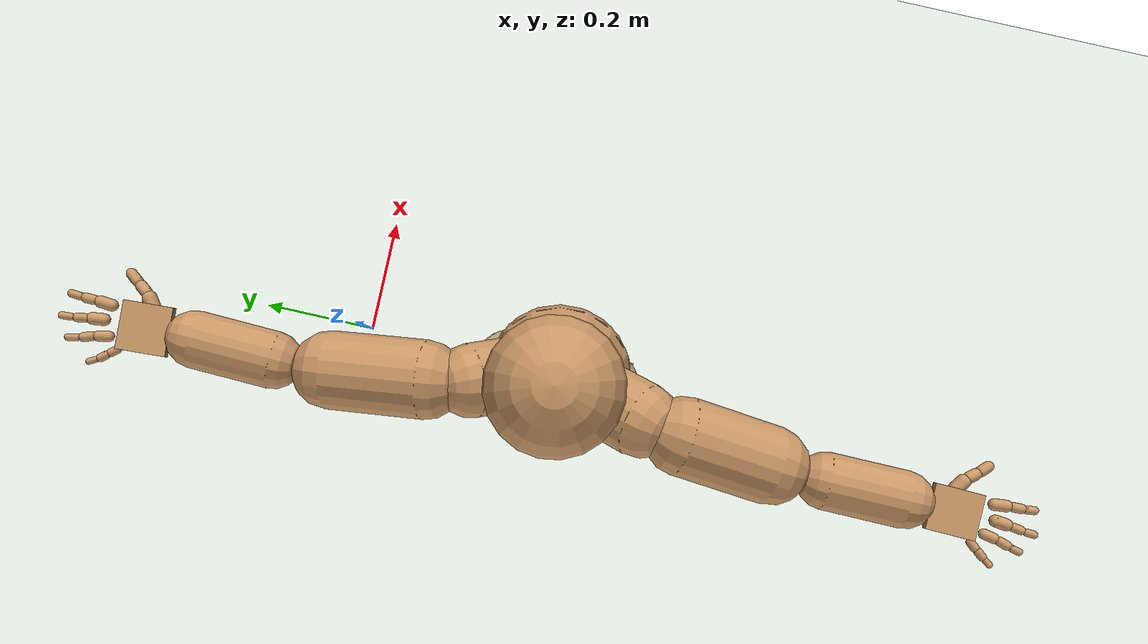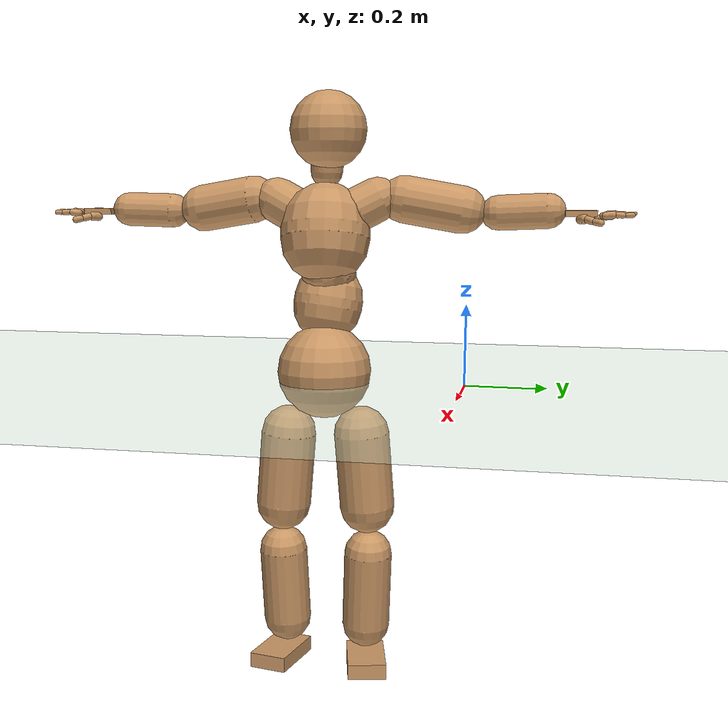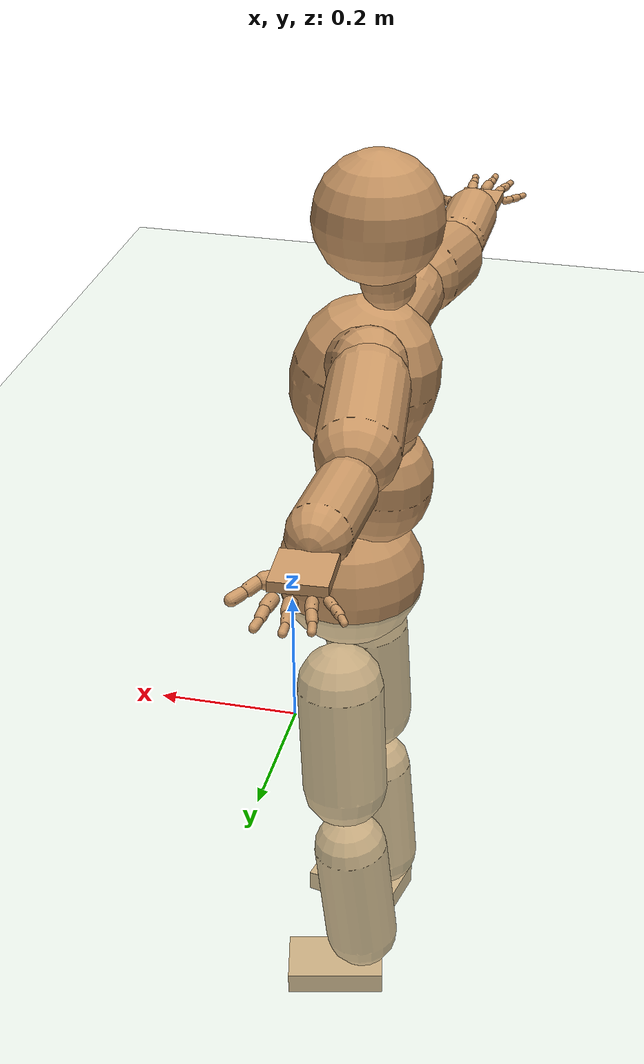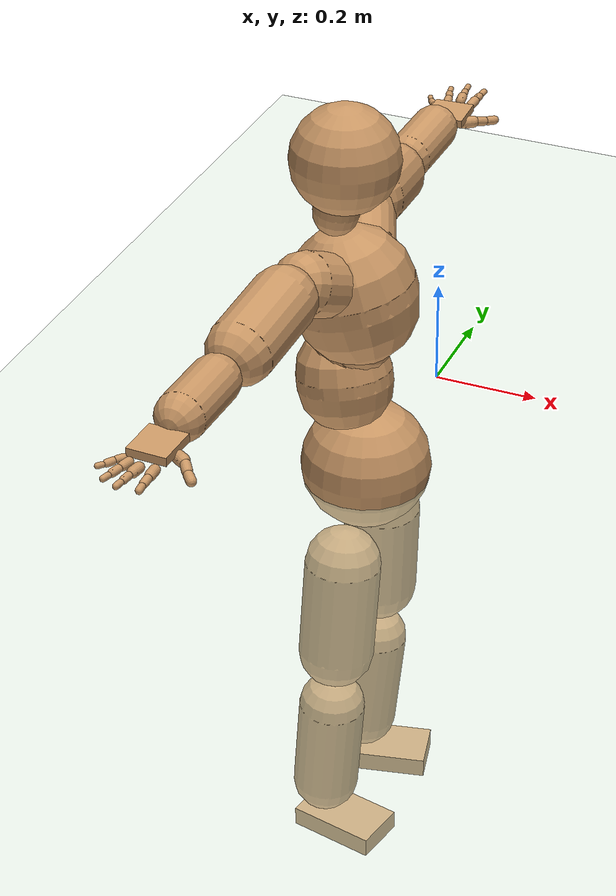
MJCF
<mujoco model="humanoid">
  <compiler coordinate="local" angle="radian"/>
  <default>
    <joint damping="0.0" armature="0.01" stiffness="0.0" limited="true"/>
    <geom conaffinity="1" condim="3" contype="7" margin="0.001" rgba="0.8 0.6 .4 1"/>
  </default>
  <asset>
    <texture type="skybox" builtin="gradient" rgb1=".4 .5 .6" rgb2="0 0 0" width="100" height="100"/>
    <texture builtin="flat" height="1278" mark="cross" markrgb="1 1 1" name="texgeom" random="0.01" rgb1="0.8 0.6 0.4" rgb2="0.8 0.6 0.4" type="cube" width="127"/>
    <texture builtin="checker" height="100" name="texplane" rgb1="0 0 0" rgb2="0.8 0.8 0.8" type="2d" width="100"/>
    <material name="MatPlane" reflectance="0.5" shininess="1" specular="1" texrepeat="60 60" texture="texplane"/>
    <material name="geom" texture="texgeom" texuniform="true"/>
  </asset>
  <worldbody>
    <light cutoff="100" diffuse="1 1 1" dir="-0 0 -1.3" directional="true" exponent="1" pos="0 0 1.3" specular=".1 .1 .1"/>
    <geom conaffinity="1" condim="3" name="floor" pos="0 0 0" rgba="0.8 0.9 0.8 1" size="100 100 .2" type="plane" material="MatPlane"/>
    <body name="Pelvis" pos="0.001 -0.355 0.0258">
      <freejoint name="Pelvis"/>
      <geom type="sphere" contype="1" conaffinity="1" density="500" size="0.1187" pos="0.0000 0.0000 0.0000" name="Pelvis"/>
      <body name="L_Hip" pos="-0.002 0.0904 -0.0944">
        <joint name="L_Hip_x" type="hinge" pos="0 0 0" axis="1 0 0" stiffness="800" damping="80" armature="0.02" range="-180.0000 180.0000"/>
        <joint name="L_Hip_y" type="hinge" pos="0 0 0" axis="0 1 0" stiffness="800" damping="80" armature="0.02" range="-180.0000 180.0000"/>
        <joint name="L_Hip_z" type="hinge" pos="0 0 0" axis="0 0 1" stiffness="800" damping="80" armature="0.02" range="-180.0000 180.0000"/>
        <geom type="capsule" contype="1" conaffinity="1" density="500" fromto="-0.0036 0.0045 -0.0641 -0.0142 0.0180 -0.2563" size="0.0701" name="L_Hip"/>
        <body name="L_Knee" pos="-0.0178 0.0225 -0.3204">
          <joint name="L_Knee_x" type="hinge" pos="0 0 0" axis="1 0 0" stiffness="800" damping="80" armature="0.02" range="-180.0000 180.0000"/>
          <joint name="L_Knee_y" type="hinge" pos="0 0 0" axis="0 1 0" stiffness="800" damping="80" armature="0.02" range="-180.0000 180.0000"/>
          <joint name="L_Knee_z" type="hinge" pos="0 0 0" axis="0 0 1" stiffness="800" damping="80" armature="0.02" range="-180.0000 180.0000"/>
          <geom type="capsule" contype="1" conaffinity="1" density="500" fromto="-0.0060 -0.0029 -0.0663 -0.0240 -0.0115 -0.2653" size="0.0614" name="L_Knee"/>
          <body name="L_Ankle" pos="-0.0301 -0.0144 -0.3317">
            <joint name="L_Ankle_x" type="hinge" pos="0 0 0" axis="1 0 0" stiffness="800" damping="80" armature="0.02" range="-180.0000 180.0000"/>
            <joint name="L_Ankle_y" type="hinge" pos="0 0 0" axis="0 1 0" stiffness="800" damping="80" armature="0.02" range="-180.0000 180.0000"/>
            <joint name="L_Ankle_z" type="hinge" pos="0 0 0" axis="0 0 1" stiffness="800" damping="80" armature="0.02" range="-180.0000 180.0000"/>
            <geom type="box" contype="1" conaffinity="1" density="500" pos="0.0514 0.0117 -0.0173" size="0.0823 0.0489 0.0191" quat="0.9937 0.0000 0.0000 0.1119" name="L_Ankle"/>
            <body name="L_Toe" pos="0.1028 0.0234 -0.0347">
              <joint name="L_Toe_x" type="hinge" pos="0 0 0" axis="1 0 0" stiffness="500" damping="50" armature="0.02" range="-180.0000 180.0000"/>
              <joint name="L_Toe_y" type="hinge" pos="0 0 0" axis="0 1 0" stiffness="500" damping="50" armature="0.02" range="-180.0000 180.0000"/>
              <joint name="L_Toe_z" type="hinge" pos="0 0 0" axis="0 0 1" stiffness="500" damping="50" armature="0.02" range="-180.0000 180.0000"/>
              <geom type="box" contype="1" conaffinity="1" density="500" pos="0.0000 0.0000 0.0191" size="0.0009 0.0024 0.001" quat="0.9929 0.0000 0.0000 0.1188" name="L_Toe"/>
            </body>
          </body>
        </body>
      </body>
      <body name="R_Hip" pos="-0.003 -0.0897 -0.1001">
        <joint name="R_Hip_x" type="hinge" pos="0 0 0" axis="1 0 0" stiffness="800" damping="80" armature="0.02" range="-180.0000 180.0000"/>
        <joint name="R_Hip_y" type="hinge" pos="0 0 0" axis="0 1 0" stiffness="800" damping="80" armature="0.02" range="-180.0000 180.0000"/>
        <joint name="R_Hip_z" type="hinge" pos="0 0 0" axis="0 0 1" stiffness="800" damping="80" armature="0.02" range="-180.0000 180.0000"/>
        <geom type="capsule" contype="1" conaffinity="1" density="500" fromto="-0.0022 -0.0055 -0.0633 -0.0087 -0.0221 -0.2533" size="0.0699" name="R_Hip"/>
        <body name="R_Knee" pos="-0.0109 -0.0276 -0.3167">
          <joint name="R_Knee_x" type="hinge" pos="0 0 0" axis="1 0 0" stiffness="800" damping="80" armature="0.02" range="-180.0000 180.0000"/>
          <joint name="R_Knee_y" type="hinge" pos="0 0 0" axis="0 1 0" stiffness="800" damping="80" armature="0.02" range="-180.0000 180.0000"/>
          <joint name="R_Knee_z" type="hinge" pos="0 0 0" axis="0 0 1" stiffness="800" damping="80" armature="0.02" range="-180.0000 180.0000"/>
          <geom type="capsule" contype="1" conaffinity="1" density="500" fromto="-0.0055 0.0019 -0.0646 -0.0219 0.0077 -0.2585" size="0.0614" name="R_Knee"/>
          <body name="R_Ankle" pos="-0.0274 0.0096 -0.3231">
            <joint name="R_Ankle_x" type="hinge" pos="0 0 0" axis="1 0 0" stiffness="800" damping="80" armature="0.02" range="-180.0000 180.0000"/>
            <joint name="R_Ankle_y" type="hinge" pos="0 0 0" axis="0 1 0" stiffness="800" damping="80" armature="0.02" range="-180.0000 180.0000"/>
            <joint name="R_Ankle_z" type="hinge" pos="0 0 0" axis="0 0 1" stiffness="800" damping="80" armature="0.02" range="-180.0000 180.0000"/>
            <geom type="box" contype="1" conaffinity="1" density="500" pos="0.0485 -0.0097 -0.0189" size="0.0823 0.0489 0.0191" quat="0.9951 0.0000 0.0000 -0.0988" name="R_Ankle"/>
            <body name="R_Toe" pos="0.097 -0.0194 -0.0378">
              <joint name="R_Toe_x" type="hinge" pos="0 0 0" axis="1 0 0" stiffness="500" damping="50" armature="0.02" range="-180.0000 180.0000"/>
              <joint name="R_Toe_y" type="hinge" pos="0 0 0" axis="0 1 0" stiffness="500" damping="50" armature="0.02" range="-180.0000 180.0000"/>
              <joint name="R_Toe_z" type="hinge" pos="0 0 0" axis="0 0 1" stiffness="500" damping="50" armature="0.02" range="-180.0000 180.0000"/>
              <geom type="box" contype="1" conaffinity="1" density="500" pos="0.0000 0.0000 0.0206" size="0.0009 0.0024 0.001" quat="0.9962 0.0000 0.0000 -0.0871" name="R_Toe"/>
            </body>
          </body>
        </body>
      </body>
      <body name="Torso" pos="-0.0323 -0.0067 0.1116">
        <joint name="Torso_x" type="hinge" pos="0 0 0" axis="1 0 0" stiffness="1000" damping="100" armature="0.02" range="-180.0000 180.0000"/>
        <joint name="Torso_y" type="hinge" pos="0 0 0" axis="0 1 0" stiffness="1000" damping="100" armature="0.02" range="-180.0000 180.0000"/>
        <joint name="Torso_z" type="hinge" pos="0 0 0" axis="0 0 1" stiffness="1000" damping="100" armature="0.02" range="-180.0000 180.0000"/>
        <geom type="capsule" contype="1" conaffinity="1" density="500" fromto="-0.0117 0.0088 0.0699 -0.0078 0.0059 0.0466" size="0.0873" name="Torso"/>
        <body name="Spine" pos="-0.0196 0.0147 0.1166">
          <joint name="Spine_x" type="hinge" pos="0 0 0" axis="1 0 0" stiffness="1000" damping="100" armature="0.02" range="-180.0000 180.0000"/>
          <joint name="Spine_y" type="hinge" pos="0 0 0" axis="0 1 0" stiffness="1000" damping="100" armature="0.02" range="-180.0000 180.0000"/>
          <joint name="Spine_z" type="hinge" pos="0 0 0" axis="0 0 1" stiffness="1000" damping="100" armature="0.02" range="-180.0000 180.0000"/>
          <geom type="capsule" contype="1" conaffinity="1" density="500" fromto="0.0285 -0.0051 0.0262 0.0190 -0.0034 0.0175" size="0.0696" name="Spine"/>
          <body name="Chest" pos="0.0475 -0.0086 0.0437">
            <joint name="Chest_x" type="hinge" pos="0 0 0" axis="1 0 0" stiffness="1000" damping="100" armature="0.02" range="-180.0000 180.0000"/>
            <joint name="Chest_y" type="hinge" pos="0 0 0" axis="0 1 0" stiffness="1000" damping="100" armature="0.02" range="-180.0000 180.0000"/>
            <joint name="Chest_z" type="hinge" pos="0 0 0" axis="0 0 1" stiffness="1000" damping="100" armature="0.02" range="-180.0000 180.0000"/>
            <geom type="capsule" contype="1" conaffinity="1" density="500" fromto="-0.0213 -0.0020 0.0874 -0.0142 -0.0013 0.0583" size="0.1122" name="Chest"/>
            <body name="Neck" pos="-0.0541 -0.0068 0.201">
              <joint name="Neck_x" type="hinge" pos="0 0 0" axis="1 0 0" stiffness="500" damping="50" armature="0.02" range="-180.0000 180.0000"/>
              <joint name="Neck_y" type="hinge" pos="0 0 0" axis="0 1 0" stiffness="500" damping="50" armature="0.02" range="-180.0000 180.0000"/>
              <joint name="Neck_z" type="hinge" pos="0 0 0" axis="0 0 1" stiffness="500" damping="50" armature="0.02" range="-180.0000 180.0000"/>
              <geom type="capsule" contype="1" conaffinity="1" density="500" fromto="0.0035 0.0019 0.0252 0.0139 0.0074 0.1007" size="0.0408" name="Neck"/>
              <body name="Head" pos="0.0174 0.0093 0.1259">
                <joint name="Head_x" type="hinge" pos="0 0 0" axis="1 0 0" stiffness="500" damping="50" armature="0.02" range="-180.0000 180.0000"/>
                <joint name="Head_y" type="hinge" pos="0 0 0" axis="0 1 0" stiffness="500" damping="50" armature="0.02" range="-180.0000 180.0000"/>
                <joint name="Head_z" type="hinge" pos="0 0 0" axis="0 0 1" stiffness="500" damping="50" armature="0.02" range="-180.0000 180.0000"/>
                <geom type="sphere" contype="1" conaffinity="1" density="500" size="0.0968" pos="0.0000 0.0000 0.0000" name="Head"/>
              </body>
            </body>
            <body name="L_Thorax" pos="-0.0223 0.0552 0.12">
              <joint name="L_Thorax_x" type="hinge" pos="0 0 0" axis="1 0 0" stiffness="500" damping="50" armature="0.02" range="-180.0000 180.0000"/>
              <joint name="L_Thorax_y" type="hinge" pos="0 0 0" axis="0 1 0" stiffness="500" damping="50" armature="0.02" range="-180.0000 180.0000"/>
              <joint name="L_Thorax_z" type="hinge" pos="0 0 0" axis="0 0 1" stiffness="500" damping="50" armature="0.02" range="-180.0000 180.0000"/>
              <geom type="capsule" contype="1" conaffinity="1" density="500" fromto="-0.0075 0.0173 0.0091 -0.0300 0.0691 0.0363" size="0.0555" name="L_Thorax"/>
              <body name="L_Shoulder" pos="-0.0375 0.0864 0.0454">
                <joint name="L_Shoulder_x" type="hinge" pos="0 0 0" axis="1 0 0" stiffness="500" damping="50" armature="0.02" range="-180.0000 180.0000"/>
                <joint name="L_Shoulder_y" type="hinge" pos="0 0 0" axis="0 1 0" stiffness="500" damping="50" armature="0.02" range="-180.0000 180.0000"/>
                <joint name="L_Shoulder_z" type="hinge" pos="0 0 0" axis="0 0 1" stiffness="500" damping="50" armature="0.02" range="-180.0000 180.0000"/>
                <geom type="capsule" contype="1" conaffinity="1" density="500" fromto="-0.0057 0.0479 -0.0086 -0.0227 0.1914 -0.0345" size="0.0593" name="L_Shoulder"/>
                <body name="L_Elbow" pos="-0.0284 0.2393 -0.0431">
                  <joint name="L_Elbow_x" type="hinge" pos="0 0 0" axis="1 0 0" stiffness="500" damping="50" armature="0.02" range="-720.0000 720.0000"/>
                  <joint name="L_Elbow_y" type="hinge" pos="0 0 0" axis="0 1 0" stiffness="500" damping="50" armature="0.02" range="-720.0000 720.0000"/>
                  <joint name="L_Elbow_z" type="hinge" pos="0 0 0" axis="0 0 1" stiffness="500" damping="50" armature="0.02" range="-720.0000 720.0000"/>
                  <geom type="capsule" contype="1" conaffinity="1" density="500" fromto="0.0014 0.0404 0.0017 0.0057 0.1615 0.0070" size="0.0435" name="L_Elbow"/>
                  <body name="L_Wrist" pos="0.0071 0.2018 0.0087">
                    <joint name="L_Wrist_x" type="hinge" pos="0 0 0" axis="1 0 0" stiffness="300" damping="30" armature="0.02" range="-180.0000 180.0000"/>
                    <joint name="L_Wrist_y" type="hinge" pos="0 0 0" axis="0 1 0" stiffness="300" damping="30" armature="0.02" range="-180.0000 180.0000"/>
                    <joint name="L_Wrist_z" type="hinge" pos="0 0 0" axis="0 0 1" stiffness="300" damping="30" armature="0.02" range="-180.0000 180.0000"/>
                    <geom type="box" contype="1" conaffinity="1" density="500" pos="-0.0020 0.0380 -0.0076" size="0.038 0.0373 0.0074" quat="0.7256 0.0000 0.0000 -0.6881" name="L_Wrist"/>
                    <body name="L_Index1" pos="0.0203 0.0903 -0.0127">
                      <joint name="L_Index1_x" type="hinge" pos="0 0 0" axis="1 0 0" stiffness="100" damping="10" armature="0.02" range="-180.0000 180.0000"/>
                      <joint name="L_Index1_y" type="hinge" pos="0 0 0" axis="0 1 0" stiffness="100" damping="10" armature="0.02" range="-180.0000 180.0000"/>
                      <joint name="L_Index1_z" type="hinge" pos="0 0 0" axis="0 0 1" stiffness="100" damping="10" armature="0.02" range="-180.0000 180.0000"/>
                      <geom type="capsule" contype="1" conaffinity="1" density="500" fromto="0.0006 0.0060 0.0006 0.0022 0.0240 0.0023" size="0.0091" name="L_Index1"/>
                      <body name="L_Index2" pos="0.0028 0.0299 0.0029">
                        <joint name="L_Index2_x" type="hinge" pos="0 0 0" axis="1 0 0" stiffness="100" damping="10" armature="0.02" range="-180.0000 180.0000"/>
                        <joint name="L_Index2_y" type="hinge" pos="0 0 0" axis="0 1 0" stiffness="100" damping="10" armature="0.02" range="-180.0000 180.0000"/>
                        <joint name="L_Index2_z" type="hinge" pos="0 0 0" axis="0 0 1" stiffness="100" damping="10" armature="0.02" range="-180.0000 180.0000"/>
                        <geom type="capsule" contype="1" conaffinity="1" density="500" fromto="0.0000 0.0042 -0.0003 0.0002 0.0169 -0.0010" size="0.0074" name="L_Index2"/>
                        <body name="L_Index3" pos="0.0002 0.0211 -0.0013">
                          <joint name="L_Index3_x" type="hinge" pos="0 0 0" axis="1 0 0" stiffness="100" damping="10" armature="0.02" range="-180.0000 180.0000"/>
                          <joint name="L_Index3_y" type="hinge" pos="0 0 0" axis="0 1 0" stiffness="100" damping="10" armature="0.02" range="-180.0000 180.0000"/>
                          <joint name="L_Index3_z" type="hinge" pos="0 0 0" axis="0 0 1" stiffness="100" damping="10" armature="0.02" range="-180.0000 180.0000"/>
                          <geom type="capsule" contype="1" conaffinity="1" density="500" fromto="0.0004 0.0046 0.0001 0.0018 0.0185 0.0006" size="0.006" name="L_Index3"/>
                        </body>
                      </body>
                    </body>
                    <body name="L_Middle1" pos="-0.002 0.0967 -0.0104">
                      <joint name="L_Middle1_x" type="hinge" pos="0 0 0" axis="1 0 0" stiffness="100" damping="10" armature="0.02" range="-180.0000 180.0000"/>
                      <joint name="L_Middle1_y" type="hinge" pos="0 0 0" axis="0 1 0" stiffness="100" damping="10" armature="0.02" range="-180.0000 180.0000"/>
                      <joint name="L_Middle1_z" type="hinge" pos="0 0 0" axis="0 0 1" stiffness="100" damping="10" armature="0.02" range="-180.0000 180.0000"/>
                      <geom type="capsule" contype="1" conaffinity="1" density="500" fromto="-0.0007 0.0057 0.0003 -0.0028 0.0226 0.0013" size="0.0093" name="L_Middle1"/>
                      <body name="L_Middle2" pos="-0.0035 0.0283 0.0016">
                        <joint name="L_Middle2_x" type="hinge" pos="0 0 0" axis="1 0 0" stiffness="100" damping="10" armature="0.02" range="-180.0000 180.0000"/>
                        <joint name="L_Middle2_y" type="hinge" pos="0 0 0" axis="0 1 0" stiffness="100" damping="10" armature="0.02" range="-180.0000 180.0000"/>
                        <joint name="L_Middle2_z" type="hinge" pos="0 0 0" axis="0 0 1" stiffness="100" damping="10" armature="0.02" range="-180.0000 180.0000"/>
                        <geom type="capsule" contype="1" conaffinity="1" density="500" fromto="-0.0007 0.0043 -0.0001 -0.0028 0.0173 -0.0005" size="0.0068" name="L_Middle2"/>
                        <body name="L_Middle3" pos="-0.0035 0.0217 -0.0006">
                          <joint name="L_Middle3_x" type="hinge" pos="0 0 0" axis="1 0 0" stiffness="100" damping="10" armature="0.02" range="-180.0000 180.0000"/>
                          <joint name="L_Middle3_y" type="hinge" pos="0 0 0" axis="0 1 0" stiffness="100" damping="10" armature="0.02" range="-180.0000 180.0000"/>
                          <joint name="L_Middle3_z" type="hinge" pos="0 0 0" axis="0 0 1" stiffness="100" damping="10" armature="0.02" range="-180.0000 180.0000"/>
                          <geom type="capsule" contype="1" conaffinity="1" density="500" fromto="-0.0003 0.0047 0.0003 -0.0012 0.0189 0.0011" size="0.0055" name="L_Middle3"/>
                        </body>
                      </body>
                    </body>
                    <body name="L_Pinky1" pos="-0.0399 0.0729 -0.0183">
                      <joint name="L_Pinky1_x" type="hinge" pos="0 0 0" axis="1 0 0" stiffness="100" damping="10" armature="0.02" range="-180.0000 180.0000"/>
                      <joint name="L_Pinky1_y" type="hinge" pos="0 0 0" axis="0 1 0" stiffness="100" damping="10" armature="0.02" range="-180.0000 180.0000"/>
                      <joint name="L_Pinky1_z" type="hinge" pos="0 0 0" axis="0 0 1" stiffness="100" damping="10" armature="0.02" range="-180.0000 180.0000"/>
                      <geom type="capsule" contype="1" conaffinity="1" density="500" fromto="-0.0023 0.0028 -0.0001 -0.0092 0.0111 -0.0005" size="0.0066" name="L_Pinky1"/>
                      <body name="L_Pinky2" pos="-0.0115 0.0139 -0.0006">
                        <joint name="L_Pinky2_x" type="hinge" pos="0 0 0" axis="1 0 0" stiffness="100" damping="10" armature="0.02" range="-180.0000 180.0000"/>
                        <joint name="L_Pinky2_y" type="hinge" pos="0 0 0" axis="0 1 0" stiffness="100" damping="10" armature="0.02" range="-180.0000 180.0000"/>
                        <joint name="L_Pinky2_z" type="hinge" pos="0 0 0" axis="0 0 1" stiffness="100" damping="10" armature="0.02" range="-180.0000 180.0000"/>
                        <geom type="capsule" contype="1" conaffinity="1" density="500" fromto="-0.0022 0.0029 -0.0002 -0.0087 0.0114 -0.0009" size="0.0065" name="L_Pinky2"/>
                        <body name="L_Pinky3" pos="-0.0109 0.0143 -0.0011">
                          <joint name="L_Pinky3_x" type="hinge" pos="0 0 0" axis="1 0 0" stiffness="100" damping="10" armature="0.02" range="-180.0000 180.0000"/>
                          <joint name="L_Pinky3_y" type="hinge" pos="0 0 0" axis="0 1 0" stiffness="100" damping="10" armature="0.02" range="-180.0000 180.0000"/>
                          <joint name="L_Pinky3_z" type="hinge" pos="0 0 0" axis="0 0 1" stiffness="100" damping="10" armature="0.02" range="-180.0000 180.0000"/>
                          <geom type="capsule" contype="1" conaffinity="1" density="500" fromto="-0.0018 0.0033 0.0002 -0.0071 0.0130 0.0007" size="0.0048" name="L_Pinky3"/>
                        </body>
                      </body>
                    </body>
                    <body name="L_Ring1" pos="-0.0246 0.0853 -0.0133">
                      <joint name="L_Ring1_x" type="hinge" pos="0 0 0" axis="1 0 0" stiffness="100" damping="10" armature="0.02" range="-180.0000 180.0000"/>
                      <joint name="L_Ring1_y" type="hinge" pos="0 0 0" axis="0 1 0" stiffness="100" damping="10" armature="0.02" range="-180.0000 180.0000"/>
                      <joint name="L_Ring1_z" type="hinge" pos="0 0 0" axis="0 0 1" stiffness="100" damping="10" armature="0.02" range="-180.0000 180.0000"/>
                      <geom type="capsule" contype="1" conaffinity="1" density="500" fromto="-0.0010 0.0052 0.0003 -0.0041 0.0206 0.0013" size="0.008" name="L_Ring1"/>
                      <body name="L_Ring2" pos="-0.0051 0.0258 0.0016">
                        <joint name="L_Ring2_x" type="hinge" pos="0 0 0" axis="1 0 0" stiffness="100" damping="10" armature="0.02" range="-180.0000 180.0000"/>
                        <joint name="L_Ring2_y" type="hinge" pos="0 0 0" axis="0 1 0" stiffness="100" damping="10" armature="0.02" range="-180.0000 180.0000"/>
                        <joint name="L_Ring2_z" type="hinge" pos="0 0 0" axis="0 0 1" stiffness="100" damping="10" armature="0.02" range="-180.0000 180.0000"/>
                        <geom type="capsule" contype="1" conaffinity="1" density="500" fromto="-0.0014 0.0042 -0.0002 -0.0054 0.0168 -0.0009" size="0.0072" name="L_Ring2"/>
                        <body name="L_Ring3" pos="-0.0068 0.021 -0.0011">
                          <joint name="L_Ring3_x" type="hinge" pos="0 0 0" axis="1 0 0" stiffness="100" damping="10" armature="0.02" range="-180.0000 180.0000"/>
                          <joint name="L_Ring3_y" type="hinge" pos="0 0 0" axis="0 1 0" stiffness="100" damping="10" armature="0.02" range="-180.0000 180.0000"/>
                          <joint name="L_Ring3_z" type="hinge" pos="0 0 0" axis="0 0 1" stiffness="100" damping="10" armature="0.02" range="-180.0000 180.0000"/>
                          <geom type="capsule" contype="1" conaffinity="1" density="500" fromto="-0.0010 0.0046 0.0002 -0.0038 0.0184 0.0007" size="0.0054" name="L_Ring3"/>
                        </body>
                      </body>
                    </body>
                    <body name="L_Thumb1" pos="0.0261 0.0349 -0.0212">
                      <joint name="L_Thumb1_x" type="hinge" pos="0 0 0" axis="1 0 0" stiffness="100" damping="10" armature="0.02" range="-180.0000 180.0000"/>
                      <joint name="L_Thumb1_y" type="hinge" pos="0 0 0" axis="0 1 0" stiffness="100" damping="10" armature="0.02" range="-180.0000 180.0000"/>
                      <joint name="L_Thumb1_z" type="hinge" pos="0 0 0" axis="0 0 1" stiffness="100" damping="10" armature="0.02" range="-180.0000 180.0000"/>
                      <geom type="capsule" contype="1" conaffinity="1" density="500" fromto="0.0045 0.0030 0.0003 0.0181 0.0121 0.0012" size="0.0114" name="L_Thumb1"/>
                      <body name="L_Thumb2" pos="0.0226 0.0152 0.0016">
                        <joint name="L_Thumb2_x" type="hinge" pos="0 0 0" axis="1 0 0" stiffness="100" damping="10" armature="0.02" range="-180.0000 180.0000"/>
                        <joint name="L_Thumb2_y" type="hinge" pos="0 0 0" axis="0 1 0" stiffness="100" damping="10" armature="0.02" range="-180.0000 180.0000"/>
                        <joint name="L_Thumb2_z" type="hinge" pos="0 0 0" axis="0 0 1" stiffness="100" damping="10" armature="0.02" range="-180.0000 180.0000"/>
                        <geom type="capsule" contype="1" conaffinity="1" density="500" fromto="0.0027 0.0037 -0.0011 0.0107 0.0148 -0.0044" size="0.009" name="L_Thumb2"/>
                        <body name="L_Thumb3" pos="0.0134 0.0185 -0.0055">
                          <joint name="L_Thumb3_x" type="hinge" pos="0 0 0" axis="1 0 0" stiffness="100" damping="10" armature="0.02" range="-180.0000 180.0000"/>
                          <joint name="L_Thumb3_y" type="hinge" pos="0 0 0" axis="0 1 0" stiffness="100" damping="10" armature="0.02" range="-180.0000 180.0000"/>
                          <joint name="L_Thumb3_z" type="hinge" pos="0 0 0" axis="0 0 1" stiffness="100" damping="10" armature="0.02" range="-180.0000 180.0000"/>
                          <geom type="capsule" contype="1" conaffinity="1" density="500" fromto="0.0031 0.0041 -0.0007 0.0123 0.0164 -0.0028" size="0.0084" name="L_Thumb3"/>
                        </body>
                      </body>
                    </body>
                  </body>
                </body>
              </body>
            </body>
            <body name="R_Thorax" pos="-0.0302 -0.0585 0.1161">
              <joint name="R_Thorax_x" type="hinge" pos="0 0 0" axis="1 0 0" stiffness="500" damping="50" armature="0.02" range="-180.0000 180.0000"/>
              <joint name="R_Thorax_y" type="hinge" pos="0 0 0" axis="0 1 0" stiffness="500" damping="50" armature="0.02" range="-180.0000 180.0000"/>
              <joint name="R_Thorax_z" type="hinge" pos="0 0 0" axis="0 0 1" stiffness="500" damping="50" armature="0.02" range="-180.0000 180.0000"/>
              <geom type="capsule" contype="1" conaffinity="1" density="500" fromto="-0.0058 -0.0187 0.0095 -0.0230 -0.0749 0.0380" size="0.0568" name="R_Thorax"/>
              <body name="R_Shoulder" pos="-0.0288 -0.0936 0.0475">
                <joint name="R_Shoulder_x" type="hinge" pos="0 0 0" axis="1 0 0" stiffness="500" damping="50" armature="0.02" range="-180.0000 180.0000"/>
                <joint name="R_Shoulder_y" type="hinge" pos="0 0 0" axis="0 1 0" stiffness="500" damping="50" armature="0.02" range="-180.0000 180.0000"/>
                <joint name="R_Shoulder_z" type="hinge" pos="0 0 0" axis="0 0 1" stiffness="500" damping="50" armature="0.02" range="-180.0000 180.0000"/>
                <geom type="capsule" contype="1" conaffinity="1" density="500" fromto="-0.0044 -0.0461 -0.0077 -0.0176 -0.1845 -0.0309" size="0.0598" name="R_Shoulder"/>
                <body name="R_Elbow" pos="-0.0219 -0.2306 -0.0387">
                  <joint name="R_Elbow_x" type="hinge" pos="0 0 0" axis="1 0 0" stiffness="500" damping="50" armature="0.02" range="-720.0000 720.0000"/>
                  <joint name="R_Elbow_y" type="hinge" pos="0 0 0" axis="0 1 0" stiffness="500" damping="50" armature="0.02" range="-720.0000 720.0000"/>
                  <joint name="R_Elbow_z" type="hinge" pos="0 0 0" axis="0 0 1" stiffness="500" damping="50" armature="0.02" range="-720.0000 720.0000"/>
                  <geom type="capsule" contype="1" conaffinity="1" density="500" fromto="-0.0004 -0.0403 0.0010 -0.0016 -0.1613 0.0040" size="0.0436" name="R_Elbow"/>
                  <body name="R_Wrist" pos="-0.002 -0.2017 0.005">
                    <joint name="R_Wrist_x" type="hinge" pos="0 0 0" axis="1 0 0" stiffness="300" damping="30" armature="0.02" range="-180.0000 180.0000"/>
                    <joint name="R_Wrist_y" type="hinge" pos="0 0 0" axis="0 1 0" stiffness="300" damping="30" armature="0.02" range="-180.0000 180.0000"/>
                    <joint name="R_Wrist_z" type="hinge" pos="0 0 0" axis="0 0 1" stiffness="300" damping="30" armature="0.02" range="-180.0000 180.0000"/>
                    <geom type="box" contype="1" conaffinity="1" density="500" pos="-0.0011 -0.0375 -0.0070" size="0.038 0.035 0.0077" quat="0.7177 0.0000 0.0000 0.6964" name="R_Wrist"/>
                    <body name="R_Index1" pos="0.0221 -0.0893 -0.0116">
                      <joint name="R_Index1_x" type="hinge" pos="0 0 0" axis="1 0 0" stiffness="100" damping="10" armature="0.02" range="-180.0000 180.0000"/>
                      <joint name="R_Index1_y" type="hinge" pos="0 0 0" axis="0 1 0" stiffness="100" damping="10" armature="0.02" range="-180.0000 180.0000"/>
                      <joint name="R_Index1_z" type="hinge" pos="0 0 0" axis="0 0 1" stiffness="100" damping="10" armature="0.02" range="-180.0000 180.0000"/>
                      <geom type="capsule" contype="1" conaffinity="1" density="500" fromto="0.0006 -0.0060 0.0006 0.0022 -0.0240 0.0023" size="0.0091" name="R_Index1"/>
                      <body name="R_Index2" pos="0.0028 -0.0299 0.0029">
                        <joint name="R_Index2_x" type="hinge" pos="0 0 0" axis="1 0 0" stiffness="100" damping="10" armature="0.02" range="-180.0000 180.0000"/>
                        <joint name="R_Index2_y" type="hinge" pos="0 0 0" axis="0 1 0" stiffness="100" damping="10" armature="0.02" range="-180.0000 180.0000"/>
                        <joint name="R_Index2_z" type="hinge" pos="0 0 0" axis="0 0 1" stiffness="100" damping="10" armature="0.02" range="-180.0000 180.0000"/>
                        <geom type="capsule" contype="1" conaffinity="1" density="500" fromto="0.0000 -0.0042 -0.0003 0.0002 -0.0169 -0.0010" size="0.0074" name="R_Index2"/>
                        <body name="R_Index3" pos="0.0002 -0.0211 -0.0013">
                          <joint name="R_Index3_x" type="hinge" pos="0 0 0" axis="1 0 0" stiffness="100" damping="10" armature="0.02" range="-180.0000 180.0000"/>
                          <joint name="R_Index3_y" type="hinge" pos="0 0 0" axis="0 1 0" stiffness="100" damping="10" armature="0.02" range="-180.0000 180.0000"/>
                          <joint name="R_Index3_z" type="hinge" pos="0 0 0" axis="0 0 1" stiffness="100" damping="10" armature="0.02" range="-180.0000 180.0000"/>
                          <geom type="capsule" contype="1" conaffinity="1" density="500" fromto="0.0004 -0.0038 0.0001 0.0018 -0.0153 0.0006" size="0.0063" name="R_Index3"/>
                        </body>
                      </body>
                    </body>
                    <body name="R_Middle1" pos="-0.0002 -0.0957 -0.0093">
                      <joint name="R_Middle1_x" type="hinge" pos="0 0 0" axis="1 0 0" stiffness="100" damping="10" armature="0.02" range="-180.0000 180.0000"/>
                      <joint name="R_Middle1_y" type="hinge" pos="0 0 0" axis="0 1 0" stiffness="100" damping="10" armature="0.02" range="-180.0000 180.0000"/>
                      <joint name="R_Middle1_z" type="hinge" pos="0 0 0" axis="0 0 1" stiffness="100" damping="10" armature="0.02" range="-180.0000 180.0000"/>
                      <geom type="capsule" contype="1" conaffinity="1" density="500" fromto="-0.0007 -0.0057 0.0003 -0.0028 -0.0226 0.0013" size="0.0093" name="R_Middle1"/>
                      <body name="R_Middle2" pos="-0.0035 -0.0283 0.0016">
                        <joint name="R_Middle2_x" type="hinge" pos="0 0 0" axis="1 0 0" stiffness="100" damping="10" armature="0.02" range="-180.0000 180.0000"/>
                        <joint name="R_Middle2_y" type="hinge" pos="0 0 0" axis="0 1 0" stiffness="100" damping="10" armature="0.02" range="-180.0000 180.0000"/>
                        <joint name="R_Middle2_z" type="hinge" pos="0 0 0" axis="0 0 1" stiffness="100" damping="10" armature="0.02" range="-180.0000 180.0000"/>
                        <geom type="capsule" contype="1" conaffinity="1" density="500" fromto="-0.0007 -0.0043 -0.0001 -0.0028 -0.0173 -0.0005" size="0.0068" name="R_Middle2"/>
                        <body name="R_Middle3" pos="-0.0035 -0.0217 -0.0006">
                          <joint name="R_Middle3_x" type="hinge" pos="0 0 0" axis="1 0 0" stiffness="100" damping="10" armature="0.02" range="-180.0000 180.0000"/>
                          <joint name="R_Middle3_y" type="hinge" pos="0 0 0" axis="0 1 0" stiffness="100" damping="10" armature="0.02" range="-180.0000 180.0000"/>
                          <joint name="R_Middle3_z" type="hinge" pos="0 0 0" axis="0 0 1" stiffness="100" damping="10" armature="0.02" range="-180.0000 180.0000"/>
                          <geom type="capsule" contype="1" conaffinity="1" density="500" fromto="-0.0003 -0.0039 0.0003 -0.0012 -0.0157 0.0011" size="0.0058" name="R_Middle3"/>
                        </body>
                      </body>
                    </body>
                    <body name="R_Pinky1" pos="-0.0382 -0.072 -0.0173">
                      <joint name="R_Pinky1_x" type="hinge" pos="0 0 0" axis="1 0 0" stiffness="100" damping="10" armature="0.02" range="-180.0000 180.0000"/>
                      <joint name="R_Pinky1_y" type="hinge" pos="0 0 0" axis="0 1 0" stiffness="100" damping="10" armature="0.02" range="-180.0000 180.0000"/>
                      <joint name="R_Pinky1_z" type="hinge" pos="0 0 0" axis="0 0 1" stiffness="100" damping="10" armature="0.02" range="-180.0000 180.0000"/>
                      <geom type="capsule" contype="1" conaffinity="1" density="500" fromto="-0.0023 -0.0028 -0.0001 -0.0092 -0.0111 -0.0005" size="0.0066" name="R_Pinky1"/>
                      <body name="R_Pinky2" pos="-0.0115 -0.0139 -0.0006">
                        <joint name="R_Pinky2_x" type="hinge" pos="0 0 0" axis="1 0 0" stiffness="100" damping="10" armature="0.02" range="-180.0000 180.0000"/>
                        <joint name="R_Pinky2_y" type="hinge" pos="0 0 0" axis="0 1 0" stiffness="100" damping="10" armature="0.02" range="-180.0000 180.0000"/>
                        <joint name="R_Pinky2_z" type="hinge" pos="0 0 0" axis="0 0 1" stiffness="100" damping="10" armature="0.02" range="-180.0000 180.0000"/>
                        <geom type="capsule" contype="1" conaffinity="1" density="500" fromto="-0.0022 -0.0029 -0.0002 -0.0087 -0.0114 -0.0009" size="0.0065" name="R_Pinky2"/>
                        <body name="R_Pinky3" pos="-0.0109 -0.0143 -0.0011">
                          <joint name="R_Pinky3_x" type="hinge" pos="0 0 0" axis="1 0 0" stiffness="100" damping="10" armature="0.02" range="-180.0000 180.0000"/>
                          <joint name="R_Pinky3_y" type="hinge" pos="0 0 0" axis="0 1 0" stiffness="100" damping="10" armature="0.02" range="-180.0000 180.0000"/>
                          <joint name="R_Pinky3_z" type="hinge" pos="0 0 0" axis="0 0 1" stiffness="100" damping="10" armature="0.02" range="-180.0000 180.0000"/>
                          <geom type="capsule" contype="1" conaffinity="1" density="500" fromto="-0.0018 -0.0025 0.0002 -0.0071 -0.0098 0.0007" size="0.005" name="R_Pinky3"/>
                        </body>
                      </body>
                    </body>
                    <body name="R_Ring1" pos="-0.0228 -0.0844 -0.0122">
                      <joint name="R_Ring1_x" type="hinge" pos="0 0 0" axis="1 0 0" stiffness="100" damping="10" armature="0.02" range="-180.0000 180.0000"/>
                      <joint name="R_Ring1_y" type="hinge" pos="0 0 0" axis="0 1 0" stiffness="100" damping="10" armature="0.02" range="-180.0000 180.0000"/>
                      <joint name="R_Ring1_z" type="hinge" pos="0 0 0" axis="0 0 1" stiffness="100" damping="10" armature="0.02" range="-180.0000 180.0000"/>
                      <geom type="capsule" contype="1" conaffinity="1" density="500" fromto="-0.0010 -0.0052 0.0003 -0.0041 -0.0206 0.0013" size="0.008" name="R_Ring1"/>
                      <body name="R_Ring2" pos="-0.0051 -0.0258 0.0016">
                        <joint name="R_Ring2_x" type="hinge" pos="0 0 0" axis="1 0 0" stiffness="100" damping="10" armature="0.02" range="-180.0000 180.0000"/>
                        <joint name="R_Ring2_y" type="hinge" pos="0 0 0" axis="0 1 0" stiffness="100" damping="10" armature="0.02" range="-180.0000 180.0000"/>
                        <joint name="R_Ring2_z" type="hinge" pos="0 0 0" axis="0 0 1" stiffness="100" damping="10" armature="0.02" range="-180.0000 180.0000"/>
                        <geom type="capsule" contype="1" conaffinity="1" density="500" fromto="-0.0014 -0.0042 -0.0002 -0.0054 -0.0168 -0.0009" size="0.0072" name="R_Ring2"/>
                        <body name="R_Ring3" pos="-0.0068 -0.021 -0.0011">
                          <joint name="R_Ring3_x" type="hinge" pos="0 0 0" axis="1 0 0" stiffness="100" damping="10" armature="0.02" range="-180.0000 180.0000"/>
                          <joint name="R_Ring3_y" type="hinge" pos="0 0 0" axis="0 1 0" stiffness="100" damping="10" armature="0.02" range="-180.0000 180.0000"/>
                          <joint name="R_Ring3_z" type="hinge" pos="0 0 0" axis="0 0 1" stiffness="100" damping="10" armature="0.02" range="-180.0000 180.0000"/>
                          <geom type="capsule" contype="1" conaffinity="1" density="500" fromto="-0.0010 -0.0038 0.0002 -0.0038 -0.0152 0.0007" size="0.0056" name="R_Ring3"/>
                        </body>
                      </body>
                    </body>
                    <body name="R_Thumb1" pos="0.0279 -0.034 -0.0201">
                      <joint name="R_Thumb1_x" type="hinge" pos="0 0 0" axis="1 0 0" stiffness="100" damping="10" armature="0.02" range="-180.0000 180.0000"/>
                      <joint name="R_Thumb1_y" type="hinge" pos="0 0 0" axis="0 1 0" stiffness="100" damping="10" armature="0.02" range="-180.0000 180.0000"/>
                      <joint name="R_Thumb1_z" type="hinge" pos="0 0 0" axis="0 0 1" stiffness="100" damping="10" armature="0.02" range="-180.0000 180.0000"/>
                      <geom type="capsule" contype="1" conaffinity="1" density="500" fromto="0.0045 -0.0030 0.0003 0.0181 -0.0121 0.0012" size="0.0114" name="R_Thumb1"/>
                      <body name="R_Thumb2" pos="0.0226 -0.0152 0.0016">
                        <joint name="R_Thumb2_x" type="hinge" pos="0 0 0" axis="1 0 0" stiffness="100" damping="10" armature="0.02" range="-180.0000 180.0000"/>
                        <joint name="R_Thumb2_y" type="hinge" pos="0 0 0" axis="0 1 0" stiffness="100" damping="10" armature="0.02" range="-180.0000 180.0000"/>
                        <joint name="R_Thumb2_z" type="hinge" pos="0 0 0" axis="0 0 1" stiffness="100" damping="10" armature="0.02" range="-180.0000 180.0000"/>
                        <geom type="capsule" contype="1" conaffinity="1" density="500" fromto="0.0027 -0.0037 -0.0011 0.0107 -0.0148 -0.0044" size="0.009" name="R_Thumb2"/>
                        <body name="R_Thumb3" pos="0.0134 -0.0185 -0.0055">
                          <joint name="R_Thumb3_x" type="hinge" pos="0 0 0" axis="1 0 0" stiffness="100" damping="10" armature="0.02" range="-180.0000 180.0000"/>
                          <joint name="R_Thumb3_y" type="hinge" pos="0 0 0" axis="0 1 0" stiffness="100" damping="10" armature="0.02" range="-180.0000 180.0000"/>
                          <joint name="R_Thumb3_z" type="hinge" pos="0 0 0" axis="0 0 1" stiffness="100" damping="10" armature="0.02" range="-180.0000 180.0000"/>
                          <geom type="capsule" contype="1" conaffinity="1" density="500" fromto="0.0031 -0.0033 -0.0007 0.0123 -0.0132 -0.0028" size="0.0086" name="R_Thumb3"/>
                        </body>
                      </body>
                    </body>
                  </body>
                </body>
              </body>
            </body>
          </body>
        </body>
      </body>
    </body>
  </worldbody>
  <actuator>
    <motor name="L_Hip_x" joint="L_Hip_x" gear="500"/>
    <motor name="L_Hip_y" joint="L_Hip_y" gear="500"/>
    <motor name="L_Hip_z" joint="L_Hip_z" gear="500"/>
    <motor name="L_Knee_x" joint="L_Knee_x" gear="500"/>
    <motor name="L_Knee_y" joint="L_Knee_y" gear="500"/>
    <motor name="L_Knee_z" joint="L_Knee_z" gear="500"/>
    <motor name="L_Ankle_x" joint="L_Ankle_x" gear="500"/>
    <motor name="L_Ankle_y" joint="L_Ankle_y" gear="500"/>
    <motor name="L_Ankle_z" joint="L_Ankle_z" gear="500"/>
    <motor name="L_Toe_x" joint="L_Toe_x" gear="500"/>
    <motor name="L_Toe_y" joint="L_Toe_y" gear="500"/>
    <motor name="L_Toe_z" joint="L_Toe_z" gear="500"/>
    <motor name="R_Hip_x" joint="R_Hip_x" gear="500"/>
    <motor name="R_Hip_y" joint="R_Hip_y" gear="500"/>
    <motor name="R_Hip_z" joint="R_Hip_z" gear="500"/>
    <motor name="R_Knee_x" joint="R_Knee_x" gear="500"/>
    <motor name="R_Knee_y" joint="R_Knee_y" gear="500"/>
    <motor name="R_Knee_z" joint="R_Knee_z" gear="500"/>
    <motor name="R_Ankle_x" joint="R_Ankle_x" gear="500"/>
    <motor name="R_Ankle_y" joint="R_Ankle_y" gear="500"/>
    <motor name="R_Ankle_z" joint="R_Ankle_z" gear="500"/>
    <motor name="R_Toe_x" joint="R_Toe_x" gear="500"/>
    <motor name="R_Toe_y" joint="R_Toe_y" gear="500"/>
    <motor name="R_Toe_z" joint="R_Toe_z" gear="500"/>
    <motor name="Torso_x" joint="Torso_x" gear="500"/>
    <motor name="Torso_y" joint="Torso_y" gear="500"/>
    <motor name="Torso_z" joint="Torso_z" gear="500"/>
    <motor name="Spine_x" joint="Spine_x" gear="500"/>
    <motor name="Spine_y" joint="Spine_y" gear="500"/>
    <motor name="Spine_z" joint="Spine_z" gear="500"/>
    <motor name="Chest_x" joint="Chest_x" gear="500"/>
    <motor name="Chest_y" joint="Chest_y" gear="500"/>
    <motor name="Chest_z" joint="Chest_z" gear="500"/>
    <motor name="Neck_x" joint="Neck_x" gear="500"/>
    <motor name="Neck_y" joint="Neck_y" gear="500"/>
    <motor name="Neck_z" joint="Neck_z" gear="500"/>
    <motor name="Head_x" joint="Head_x" gear="500"/>
    <motor name="Head_y" joint="Head_y" gear="500"/>
    <motor name="Head_z" joint="Head_z" gear="500"/>
    <motor name="L_Thorax_x" joint="L_Thorax_x" gear="500"/>
    <motor name="L_Thorax_y" joint="L_Thorax_y" gear="500"/>
    <motor name="L_Thorax_z" joint="L_Thorax_z" gear="500"/>
    <motor name="L_Shoulder_x" joint="L_Shoulder_x" gear="500"/>
    <motor name="L_Shoulder_y" joint="L_Shoulder_y" gear="500"/>
    <motor name="L_Shoulder_z" joint="L_Shoulder_z" gear="500"/>
    <motor name="L_Elbow_x" joint="L_Elbow_x" gear="500"/>
    <motor name="L_Elbow_y" joint="L_Elbow_y" gear="500"/>
    <motor name="L_Elbow_z" joint="L_Elbow_z" gear="500"/>
    <motor name="L_Wrist_x" joint="L_Wrist_x" gear="500"/>
    <motor name="L_Wrist_y" joint="L_Wrist_y" gear="500"/>
    <motor name="L_Wrist_z" joint="L_Wrist_z" gear="500"/>
    <motor name="L_Index1_x" joint="L_Index1_x" gear="500"/>
    <motor name="L_Index1_y" joint="L_Index1_y" gear="500"/>
    <motor name="L_Index1_z" joint="L_Index1_z" gear="500"/>
    <motor name="L_Index2_x" joint="L_Index2_x" gear="500"/>
    <motor name="L_Index2_y" joint="L_Index2_y" gear="500"/>
    <motor name="L_Index2_z" joint="L_Index2_z" gear="500"/>
    <motor name="L_Index3_x" joint="L_Index3_x" gear="500"/>
    <motor name="L_Index3_y" joint="L_Index3_y" gear="500"/>
    <motor name="L_Index3_z" joint="L_Index3_z" gear="500"/>
    <motor name="L_Middle1_x" joint="L_Middle1_x" gear="500"/>
    <motor name="L_Middle1_y" joint="L_Middle1_y" gear="500"/>
    <motor name="L_Middle1_z" joint="L_Middle1_z" gear="500"/>
    <motor name="L_Middle2_x" joint="L_Middle2_x" gear="500"/>
    <motor name="L_Middle2_y" joint="L_Middle2_y" gear="500"/>
    <motor name="L_Middle2_z" joint="L_Middle2_z" gear="500"/>
    <motor name="L_Middle3_x" joint="L_Middle3_x" gear="500"/>
    <motor name="L_Middle3_y" joint="L_Middle3_y" gear="500"/>
    <motor name="L_Middle3_z" joint="L_Middle3_z" gear="500"/>
    <motor name="L_Pinky1_x" joint="L_Pinky1_x" gear="500"/>
    <motor name="L_Pinky1_y" joint="L_Pinky1_y" gear="500"/>
    <motor name="L_Pinky1_z" joint="L_Pinky1_z" gear="500"/>
    <motor name="L_Pinky2_x" joint="L_Pinky2_x" gear="500"/>
    <motor name="L_Pinky2_y" joint="L_Pinky2_y" gear="500"/>
    <motor name="L_Pinky2_z" joint="L_Pinky2_z" gear="500"/>
    <motor name="L_Pinky3_x" joint="L_Pinky3_x" gear="500"/>
    <motor name="L_Pinky3_y" joint="L_Pinky3_y" gear="500"/>
    <motor name="L_Pinky3_z" joint="L_Pinky3_z" gear="500"/>
    <motor name="L_Ring1_x" joint="L_Ring1_x" gear="500"/>
    <motor name="L_Ring1_y" joint="L_Ring1_y" gear="500"/>
    <motor name="L_Ring1_z" joint="L_Ring1_z" gear="500"/>
    <motor name="L_Ring2_x" joint="L_Ring2_x" gear="500"/>
    <motor name="L_Ring2_y" joint="L_Ring2_y" gear="500"/>
    <motor name="L_Ring2_z" joint="L_Ring2_z" gear="500"/>
    <motor name="L_Ring3_x" joint="L_Ring3_x" gear="500"/>
    <motor name="L_Ring3_y" joint="L_Ring3_y" gear="500"/>
    <motor name="L_Ring3_z" joint="L_Ring3_z" gear="500"/>
    <motor name="L_Thumb1_x" joint="L_Thumb1_x" gear="500"/>
    <motor name="L_Thumb1_y" joint="L_Thumb1_y" gear="500"/>
    <motor name="L_Thumb1_z" joint="L_Thumb1_z" gear="500"/>
    <motor name="L_Thumb2_x" joint="L_Thumb2_x" gear="500"/>
    <motor name="L_Thumb2_y" joint="L_Thumb2_y" gear="500"/>
    <motor name="L_Thumb2_z" joint="L_Thumb2_z" gear="500"/>
    <motor name="L_Thumb3_x" joint="L_Thumb3_x" gear="500"/>
    <motor name="L_Thumb3_y" joint="L_Thumb3_y" gear="500"/>
    <motor name="L_Thumb3_z" joint="L_Thumb3_z" gear="500"/>
    <motor name="R_Thorax_x" joint="R_Thorax_x" gear="500"/>
    <motor name="R_Thorax_y" joint="R_Thorax_y" gear="500"/>
    <motor name="R_Thorax_z" joint="R_Thorax_z" gear="500"/>
    <motor name="R_Shoulder_x" joint="R_Shoulder_x" gear="500"/>
    <motor name="R_Shoulder_y" joint="R_Shoulder_y" gear="500"/>
    <motor name="R_Shoulder_z" joint="R_Shoulder_z" gear="500"/>
    <motor name="R_Elbow_x" joint="R_Elbow_x" gear="500"/>
    <motor name="R_Elbow_y" joint="R_Elbow_y" gear="500"/>
    <motor name="R_Elbow_z" joint="R_Elbow_z" gear="500"/>
    <motor name="R_Wrist_x" joint="R_Wrist_x" gear="500"/>
    <motor name="R_Wrist_y" joint="R_Wrist_y" gear="500"/>
    <motor name="R_Wrist_z" joint="R_Wrist_z" gear="500"/>
    <motor name="R_Index1_x" joint="R_Index1_x" gear="500"/>
    <motor name="R_Index1_y" joint="R_Index1_y" gear="500"/>
    <motor name="R_Index1_z" joint="R_Index1_z" gear="500"/>
    <motor name="R_Index2_x" joint="R_Index2_x" gear="500"/>
    <motor name="R_Index2_y" joint="R_Index2_y" gear="500"/>
    <motor name="R_Index2_z" joint="R_Index2_z" gear="500"/>
    <motor name="R_Index3_x" joint="R_Index3_x" gear="500"/>
    <motor name="R_Index3_y" joint="R_Index3_y" gear="500"/>
    <motor name="R_Index3_z" joint="R_Index3_z" gear="500"/>
    <motor name="R_Middle1_x" joint="R_Middle1_x" gear="500"/>
    <motor name="R_Middle1_y" joint="R_Middle1_y" gear="500"/>
    <motor name="R_Middle1_z" joint="R_Middle1_z" gear="500"/>
    <motor name="R_Middle2_x" joint="R_Middle2_x" gear="500"/>
    <motor name="R_Middle2_y" joint="R_Middle2_y" gear="500"/>
    <motor name="R_Middle2_z" joint="R_Middle2_z" gear="500"/>
    <motor name="R_Middle3_x" joint="R_Middle3_x" gear="500"/>
    <motor name="R_Middle3_y" joint="R_Middle3_y" gear="500"/>
    <motor name="R_Middle3_z" joint="R_Middle3_z" gear="500"/>
    <motor name="R_Pinky1_x" joint="R_Pinky1_x" gear="500"/>
    <motor name="R_Pinky1_y" joint="R_Pinky1_y" gear="500"/>
    <motor name="R_Pinky1_z" joint="R_Pinky1_z" gear="500"/>
    <motor name="R_Pinky2_x" joint="R_Pinky2_x" gear="500"/>
    <motor name="R_Pinky2_y" joint="R_Pinky2_y" gear="500"/>
    <motor name="R_Pinky2_z" joint="R_Pinky2_z" gear="500"/>
    <motor name="R_Pinky3_x" joint="R_Pinky3_x" gear="500"/>
    <motor name="R_Pinky3_y" joint="R_Pinky3_y" gear="500"/>
    <motor name="R_Pinky3_z" joint="R_Pinky3_z" gear="500"/>
    <motor name="R_Ring1_x" joint="R_Ring1_x" gear="500"/>
    <motor name="R_Ring1_y" joint="R_Ring1_y" gear="500"/>
    <motor name="R_Ring1_z" joint="R_Ring1_z" gear="500"/>
    <motor name="R_Ring2_x" joint="R_Ring2_x" gear="500"/>
    <motor name="R_Ring2_y" joint="R_Ring2_y" gear="500"/>
    <motor name="R_Ring2_z" joint="R_Ring2_z" gear="500"/>
    <motor name="R_Ring3_x" joint="R_Ring3_x" gear="500"/>
    <motor name="R_Ring3_y" joint="R_Ring3_y" gear="500"/>
    <motor name="R_Ring3_z" joint="R_Ring3_z" gear="500"/>
    <motor name="R_Thumb1_x" joint="R_Thumb1_x" gear="500"/>
    <motor name="R_Thumb1_y" joint="R_Thumb1_y" gear="500"/>
    <motor name="R_Thumb1_z" joint="R_Thumb1_z" gear="500"/>
    <motor name="R_Thumb2_x" joint="R_Thumb2_x" gear="500"/>
    <motor name="R_Thumb2_y" joint="R_Thumb2_y" gear="500"/>
    <motor name="R_Thumb2_z" joint="R_Thumb2_z" gear="500"/>
    <motor name="R_Thumb3_x" joint="R_Thumb3_x" gear="500"/>
    <motor name="R_Thumb3_y" joint="R_Thumb3_y" gear="500"/>
    <motor name="R_Thumb3_z" joint="R_Thumb3_z" gear="500"/>
  </actuator>
  <contact>
    <exclude body1="Torso" body2="Chest"/>
    <exclude body1="Head" body2="Chest"/>
    <exclude body1="R_Knee" body2="R_Toe"/>
    <exclude body1="R_Knee" body2="L_Ankle"/>
    <exclude body1="R_Knee" body2="L_Toe"/>
    <exclude body1="L_Knee" body2="L_Toe"/>
    <exclude body1="L_Knee" body2="R_Ankle"/>
    <exclude body1="L_Knee" body2="R_Toe"/>
    <exclude body1="L_Shoulder" body2="Chest"/>
    <exclude body1="R_Shoulder" body2="Chest"/>
  </contact>
  <sensor/>
  <size njmax="700" nconmax="700"/>
</mujoco>
